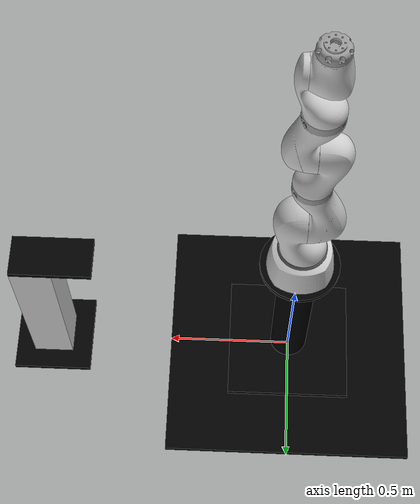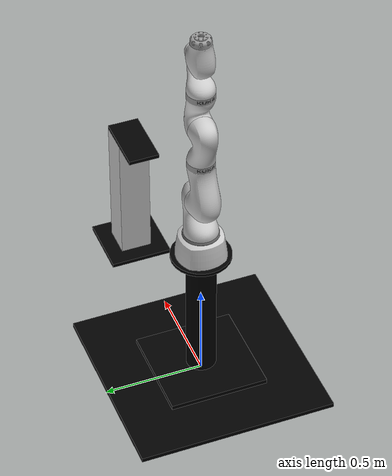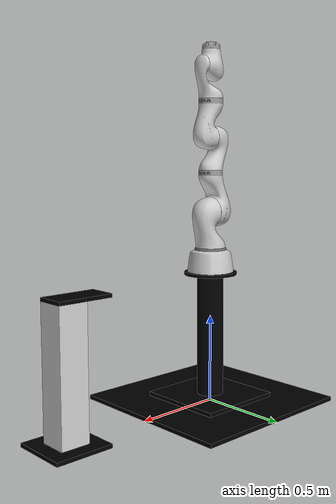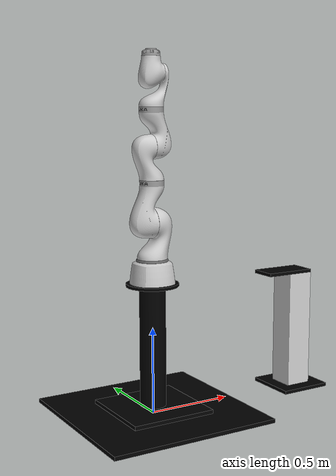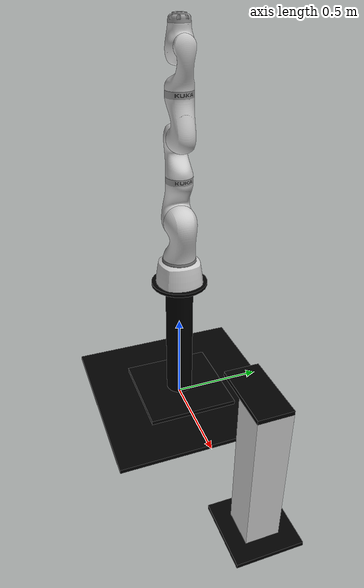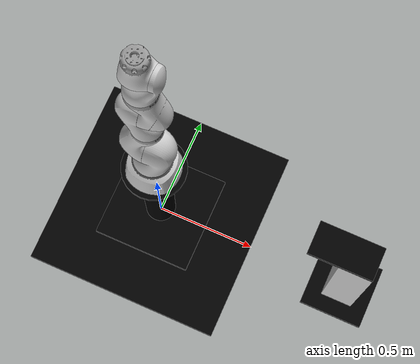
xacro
<?xml version="1.0"?>

<!-- top level -->
<robot name="med14" xmlns:xacro="http://www.ros.org/wiki/xacro">

    <!-- include macros -->
    <xacro:include filename="$(find lbr_description)/urdf/med14/med14_description.urdf.xacro" />
    <xacro:include filename="$(find cranium_description)/urdf/robot_pedestal.urdf.xacro" />
    <xacro:include filename="$(find cranium_description)/urdf/ankle_base.urdf.xacro" />
    <xacro:include filename="$(find cranium_description)/urdf/materials.xacro" />

    <xacro:arg name="robot_name" default="lbr" />
    <xacro:arg name="port_id" default="30200" />
    <xacro:arg name="sim" default="true" />

    <xacro:property name="pedestal_prefix" value="robot_" />
    <xacro:property name="work_area_prefix" value="wa_" />

    <link name="world" />

    <!-- pedestal -->
    <xacro:robot_pedestal prefix="${pedestal_prefix}" />
    <joint name="pedestal_joint" type="fixed">
        <parent link="world" />
        <child link="${pedestal_prefix}foot_link" />
        <origin rpy="0 0 0" xyz="0.0 0.0 0" />
    </joint>

    <!-- ankle base -->
    <xacro:ankle_base prefix="${work_area_prefix}" />
    <joint name="ankle_base_joint" type="fixed">
        <parent link="world" />
        <child link="${work_area_prefix}foot_link" />
        <origin rpy="0 0 ${pi}" xyz="1.0 0.0 0" />
    </joint>
    <!-- work area orgin -->
    <joint name="work_area_joint" type="fixed">
        <parent link="${work_area_prefix}work_area_link" />
        <child link="work_area_base" />
        <origin rpy="0 0 0" xyz="-0.155 -0.08 0" />
    </joint>
    <link name="work_area_base" />

    <!-- robot -->
    <joint name="base_joint" type="fixed">
        <parent link="robot_base_link" />
        <child link="link_0" />
        <origin rpy="0 0 ${pi/2}" xyz="0.0 0.0 0" />
    </joint>
    <xacro:med14 robot_name="$(arg robot_name)" port_id="$(arg port_id)" sim="$(arg sim)" />

</robot>

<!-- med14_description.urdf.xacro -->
<robot xmlns:xacro="http://www.ros.org/wiki/xacro">

    <!-- some constants -->
    <xacro:property name="PI" value="3.1415926535897931" />
    <xacro:property name="joint_damping" value="10.0" />
    <xacro:property name="joint_friction" value="0.1" />
    <xacro:property name="joint_0_position_limit" value="170" />
    <xacro:property name="joint_1_position_limit" value="120" />
    <xacro:property name="joint_2_position_limit" value="170" />
    <xacro:property name="joint_3_position_limit" value="120" />
    <xacro:property name="joint_4_position_limit" value="170" />
    <xacro:property name="joint_5_position_limit" value="120" />
    <xacro:property name="joint_6_position_limit" value="175" />
    <xacro:property name="joint_0_velocity_limit" value="85" />
    <xacro:property name="joint_1_velocity_limit" value="85" />
    <xacro:property name="joint_2_velocity_limit" value="100" />
    <xacro:property name="joint_3_velocity_limit" value="75" />
    <xacro:property name="joint_4_velocity_limit" value="130" />
    <xacro:property name="joint_5_velocity_limit" value="135" />
    <xacro:property name="joint_6_velocity_limit" value="135" />
    <xacro:property name="effort_limit" value="200" />

    <!-- includes -->
    <xacro:include filename="$(find aabl_cranium)/gazebo/lbr.gazebo.xacro" />
    <xacro:include filename="$(find lbr_description)/ros2_control/lbr.ros2_control.xacro" />

    <!-- robot as extracted via https://github.com/syuntoku14/fusion2urdf -->
    <xacro:macro name="med14"
        params="robot_name:=^|lbr port_id:=^|30200 sim:=^|true">

        <link name="link_0">
            <inertial>
                <origin rpy="0 0 0" xyz="-0.001864 0.0 0.077517" />
                <mass value="8.146413" />
                <inertia ixx="0.044604" ixy="0.0" ixz="-0.000788" iyy="0.045465" iyz="0.0"
                    izz="0.061904" />
            </inertial>
            <visual>
                <origin rpy="0 0 0" xyz="0 0 0" />
                <geometry>
                    <mesh filename="package://lbr_description/meshes/med14/visual/link_0.dae" />
                </geometry>
            </visual>
            <collision>
                <origin rpy="0 0 0" xyz="0 0 0" />
                <geometry>
                    <mesh filename="package://lbr_description/meshes/med14/collision/link_0.stl" />
                </geometry>
            </collision>
        </link>

        <joint name="A1" type="revolute">
            <origin rpy="0 0 0" xyz="0.0 0.0 0.147" />
            <parent link="link_0" />
            <child link="link_1" />
            <axis xyz="0.0 0.0 1.0" />
            <limit effort="${effort_limit}" lower="${-joint_0_position_limit * PI / 180}"
                upper="${joint_0_position_limit * PI / 180}"
                velocity="${joint_0_velocity_limit * PI / 180}" />
            <dynamics damping="${joint_damping}" friction="${joint_friction}" />
        </joint>

        <link name="link_1">
            <inertial>
                <origin rpy="0 0 0" xyz="0.0 -0.033795  0.132404" />
                <mass value="5.591419" />
                <inertia ixx="0.044885" ixy="0.0" ixz="0.0" iyy="0.045283" iyz="0.006703"
                    izz="0.016776" />
            </inertial>
            <visual>
                <origin rpy="0 0 0" xyz="0.0 0.0 -0.147" />
                <geometry>
                    <mesh filename="package://lbr_description/meshes/med14/visual/link_1.dae" />
                </geometry>
            </visual>
            <collision>
                <origin rpy="0 0 0" xyz="0.0 0.0 -0.147" />
                <geometry>
                    <mesh filename="package://lbr_description/meshes/med14/collision/link_1.stl" />
                </geometry>
            </collision>
        </link>

        <joint name="A2" type="revolute">
            <origin rpy="0 0 0" xyz="0.0 -0.01 0.2125" />
            <parent link="link_1" />
            <child link="link_2" />
            <axis xyz="0.0 1.0 0.0" />
            <limit effort="${effort_limit}" lower="${-joint_1_position_limit * PI / 180}"
                upper="${joint_1_position_limit * PI / 180}"
                velocity="${joint_1_velocity_limit * PI / 180}" />
            <dynamics damping="${joint_damping}" friction="${joint_friction}" />
        </joint>

        <link name="link_2">
            <inertial>
                <origin rpy="0 0 0" xyz="0.000136 0.047546 0.076324" />
                <mass value="6.013411" />
                <inertia ixx="0.05833" ixy="-3.5e-05" ixz="5.9e-05" iyy="0.057062" iyz="0.010605"
                    izz="0.017466" />
            </inertial>
            <visual>
                <origin rpy="0 0 0" xyz="0.0 0.01 -0.3595" />
                <geometry>
                    <mesh filename="package://lbr_description/meshes/med14/visual/link_2.dae" />
                </geometry>
            </visual>
            <collision>
                <origin rpy="0 0 0" xyz="0.0 0.01 -0.3595" />
                <geometry>
                    <mesh filename="package://lbr_description/meshes/med14/collision/link_2.stl" />
                </geometry>
            </collision>
        </link>

        <joint name="A3" type="revolute">
            <origin rpy="0 0 0" xyz="0.0 0.01 0.228" />
            <parent link="link_2" />
            <child link="link_3" />
            <axis xyz="0.0 0.0 1.0" />
            <limit effort="${effort_limit}" lower="${-joint_2_position_limit * PI / 180}"
                upper="${joint_2_position_limit * PI / 180}"
                velocity="${joint_2_velocity_limit * PI / 180}" />
            <dynamics damping="${joint_damping}" friction="${joint_friction}" />
        </joint>

        <link name="link_3">
            <inertial>
                <origin rpy="0 0 0" xyz="0.0 0.034913 0.123108" />
                <mass value="3.65879" />
                <inertia ixx="0.02296" ixy="0.0" ixz="0.0" iyy="0.021913" iyz="-0.004065"
                    izz="0.00814" />
            </inertial>
            <visual>
                <origin rpy="0 0 0" xyz="0.0 0.0 -0.5875" />
                <geometry>
                    <mesh filename="package://lbr_description/meshes/med14/visual/link_3.dae" />
                </geometry>
            </visual>
            <collision>
                <origin rpy="0 0 0" xyz="0.0 0.0 -0.5875" />
                <geometry>
                    <mesh filename="package://lbr_description/meshes/med14/collision/link_3.stl" />
                </geometry>
            </collision>
        </link>

        <joint name="A4" type="revolute">
            <origin rpy="0 0 0" xyz="0.0 0.0105 0.192" />
            <parent link="link_3" />
            <child link="link_4" />
            <axis xyz="0.0 -1.0 0.0" />
            <limit effort="${effort_limit}" lower="${-joint_3_position_limit * PI / 180}"
                upper="${joint_3_position_limit * PI / 180}"
                velocity="${joint_3_velocity_limit * PI / 180}" />
            <dynamics damping="${joint_damping}" friction="${joint_friction}" />
        </joint>

        <link name="link_4">
            <inertial>
                <origin rpy="0 0 0" xyz="0.0 -0.039793  0.086944" />
                <mass value="4.358267" />
                <inertia ixx="0.034255" ixy="0.0" ixz="0.0" iyy="0.032512" iyz="-0.006365"
                    izz="0.010444" />
            </inertial>
            <visual>
                <origin rpy="0 0 0" xyz="0.0 -0.0105 -0.7795" />
                <geometry>
                    <mesh filename="package://lbr_description/meshes/med14/visual/link_4.dae" />
                </geometry>
            </visual>
            <collision>
                <origin rpy="0 0 0" xyz="0.0 -0.0105 -0.7795" />
                <geometry>
                    <mesh filename="package://lbr_description/meshes/med14/collision/link_4.stl" />
                </geometry>
            </collision>
        </link>

        <joint name="A5" type="revolute">
            <origin rpy="0 0 0" xyz="0.0 -0.0105 0.2075" />
            <parent link="link_4" />
            <child link="link_5" />
            <axis xyz="0.0 0.0 1.0" />
            <limit effort="${effort_limit}" lower="${-joint_4_position_limit * PI / 180}"
                upper="${joint_4_position_limit * PI / 180}"
                velocity="${joint_4_velocity_limit * PI / 180}" />
            <dynamics damping="${joint_damping}" friction="${joint_friction}" />
        </joint>

        <link name="link_5">
            <inertial>
                <origin rpy="0 0 0" xyz="0.0 -0.029824  0.076267" />
                <mass value="1.653015" />
                <inertia ixx="0.009172" ixy="0.0" ixz="0.0"
                    iyy="0.007714" iyz="0.003033" izz="0.004159" />
            </inertial>
            <visual>
                <origin rpy="0 0 0" xyz="0.0 0.0 -0.987" />
                <geometry>
                    <mesh filename="package://lbr_description/meshes/med14/visual/link_5.dae" />
                </geometry>
            </visual>
            <collision>
                <origin rpy="0 0 0" xyz="0.0 0.0 -0.987" />
                <geometry>
                    <mesh filename="package://lbr_description/meshes/med14/collision/link_5.stl" />
                </geometry>
            </collision>
        </link>

        <joint name="A6" type="revolute">
            <origin rpy="0 0 0" xyz="0.0 -0.0707 0.1925" />
            <parent link="link_5" />
            <child link="link_6" />
            <axis xyz="0.0 1.0 0.0" />
            <limit effort="${effort_limit}" lower="${-joint_5_position_limit * PI / 180}"
                upper="${joint_5_position_limit * PI / 180}"
                velocity="${joint_5_velocity_limit * PI / 180}" />
            <dynamics damping="${joint_damping}" friction="${joint_friction}" />
        </joint>

        <link name="link_6">
            <inertial>
                <origin rpy="0 0 0" xyz="-1.000e-06 7.102e-02 4.953e-03" />
                <mass value="2.598211" />
                <inertia ixx="0.00764" ixy="0.0" ixz="0.0" iyy="0.007355" iyz="0.000336"
                    izz="0.005004" />
            </inertial>
            <visual>
                <origin rpy="0 0 0" xyz="0.0 0.0707 -1.1795" />
                <geometry>
                    <mesh filename="package://lbr_description/meshes/med14/visual/link_6.dae" />
                </geometry>
            </visual>
            <collision>
                <origin rpy="0 0 0" xyz="0.0 0.0707 -1.1795" />
                <geometry>
                    <mesh filename="package://lbr_description/meshes/med14/collision/link_6.stl" />
                </geometry>
            </collision>
        </link>

        <joint name="A7" type="revolute">
            <origin rpy="0 0 0" xyz="0.0 0.0707 0.091" />
            <parent link="link_6" />
            <child link="link_7" />
            <axis xyz="0.0 0.0 1.0" />
            <limit effort="${effort_limit}" lower="${-joint_6_position_limit * PI / 180}"
                upper="${joint_6_position_limit * PI / 180}"
                velocity="${joint_6_velocity_limit * PI / 180}" />
            <dynamics damping="${joint_damping}" friction="${joint_friction}" />
        </joint>

        <link name="link_7">
            <inertial>
                <origin rpy="0 0 0" xyz="3.0000e-06 -2.0000e-06 1.3782e-02" />
                <mass value="0.280474" />
                <inertia ixx="0.000185" ixy="0.0" ixz="0.0" iyy="0.000185" iyz="0.0" izz="0.000323" />
            </inertial>
            <visual>
                <origin rpy="0 0 0" xyz="0.0 0.0 -1.2705" />
                <geometry>
                    <mesh filename="package://lbr_description/meshes/med14/visual/link_7.dae" />
                </geometry>
            </visual>
            <collision>
                <origin rpy="0 0 0" xyz="0.0 0.0 -1.2705" />
                <geometry>
                    <mesh filename="package://lbr_description/meshes/med14/collision/link_7.stl" />
                </geometry>
            </collision>
        </link>

        <joint name="joint_ee" type="fixed">
            <parent link="link_7" />
            <child link="link_ee" />
            <origin xyz="0 0 0.035" rpy="0 0 0" />
        </joint>

        <link name="link_ee">
        </link>

        <xacro:lbr_gazebo robot_name="${robot_name}" />
        <!-- TODO: move modes to args, decouple urdf/gazebo/controls -->
        <xacro:lbr_system_interface
            joint_0_position_limit="${joint_0_position_limit * PI / 180}"
            joint_1_position_limit="${joint_1_position_limit * PI / 180}"
            joint_2_position_limit="${joint_2_position_limit * PI / 180}"
            joint_3_position_limit="${joint_3_position_limit * PI / 180}"
            joint_4_position_limit="${joint_4_position_limit * PI / 180}"
            joint_5_position_limit="${joint_5_position_limit * PI / 180}"
            joint_6_position_limit="${joint_6_position_limit * PI / 180}"
            effort_limit="${effort_limit}"
            sim="${sim}" remote_host="INADDR_ANY" port_id="${port_id}" />

    </xacro:macro>
</robot>

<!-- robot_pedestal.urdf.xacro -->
<!-- pedestal which the robot stands on -->
<robot xmlns:xacro="http://www.ros.org/wiki/xacro">

    <!-- xacro pedestal -->
    <xacro:macro name="robot_pedestal" params="prefix">
        <!-- pedestal links -->
        <link name="${prefix}foot_link">
            <visual>
                <origin rpy="0 0 0" xyz="0 0 0.0115" />
                <geometry>
                    <box size="1 1 0.023"/>
                </geometry>
                <material name="black" />
            </visual>
            <collision>
                <origin rpy="0 0 0" xyz="0 0 0.0115" />
                <geometry>
                    <box size="1 1 0.023"/>
                </geometry>
            </collision>
        </link>
        <link name="${prefix}mid_foot_link">
            <visual>
                <origin rpy="0 0 0" xyz="0 0 0.0115" />
                <geometry>
                    <box size="0.5 0.5 0.023"/>
                </geometry>
                <material name="black" />
            </visual>
            <collision>
                <origin rpy="0 0 0" xyz="0 0 0.0115" />
                <geometry>
                    <box size="0.5 0.5 0.023"/>
                </geometry>
            </collision>
        </link>
        <link name="${prefix}column_link">
            <visual>
                <origin rpy="0 0 0" xyz="0 0 0.35" />
                <geometry>
                    <cylinder length="0.7" radius="0.075"/>
                </geometry>
                <material name="black" />
            </visual>
            <collision>
                <origin rpy="0 0 0" xyz="0 0 0.35" />
                <geometry>
                    <cylinder length="0.7" radius="0.075"/>
                </geometry>
            </collision>
        </link>
        <link name="${prefix}base_link">
            <visual>
                <origin rpy="0 0 0" xyz="0 0 0.0085" />
                <geometry>
                    <cylinder length="0.017" radius="0.15"/>
                </geometry>
                <material name="black" />
            </visual>
        </link>

        <!-- pedestal joints -->
        <joint name="${prefix}foot_joint" type="fixed">
            <parent link="${prefix}foot_link" />
            <child link="${prefix}mid_foot_link" />
            <origin rpy="0 0 0" xyz="0.0 0.0 0.023" />
        </joint>
        <joint name="${prefix}foot_column_joint" type="fixed">
            <parent link="${prefix}mid_foot_link" />
            <child link="${prefix}column_link" />
            <origin rpy="0 0 0" xyz="0.0 0.0 0.023" />
        </joint>
        <joint name="${prefix}column_base_joint" type="fixed">
            <parent link="${prefix}column_link" />
            <child link="${prefix}base_link" />
            <origin rpy="0 0 0" xyz="0.0 0.0 0.7" />
        </joint>
    </xacro:macro>
</robot>

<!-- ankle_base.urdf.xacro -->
<!-- top level -->
<robot name="med14" xmlns:xacro="http://www.ros.org/wiki/xacro">

    <!-- xacro ankle base -->
    <xacro:macro name="ankle_base" params="prefix">
        <!-- work area links -->
        <link name="${prefix}foot_link">
            <visual>
                <origin rpy="0 0 0" xyz="0 0 0.0105" />
                <geometry>
                    <box size="0.32 0.32 0.021" />
                </geometry>
                <material name="black" />
            </visual>
            <collision>
                <origin rpy="0 0 0" xyz="0 0 0.0105" />
                <geometry>
                    <box size="0.32 0.32 0.021" />
                </geometry>
            </collision>
        </link>
        <link name="${prefix}mid_foot_link">
            <visual>
                <origin rpy="0 0 0" xyz="0 0 0.3535" />
                <geometry>
                    <box size="0.16 0.16 0.707" />
                </geometry>
                <material name="aluminium" />
            </visual>
            <collision>
                <origin rpy="0 0 0" xyz="0 0 0.3535" />
                <geometry>
                    <box size="0.16 0.16 0.707" />
                </geometry>
            </collision>
        </link>
        <link name="${prefix}work_area_link">
            <visual>
                <origin rpy="0 0 0" xyz="0.0 0.0 -0.01" />
                <geometry>
                    <box size="0.31 0.16 0.02" />
                </geometry>
                <material name="black" />
            </visual>
            <collision>
                <origin rpy="0 0 0" xyz="0.0 0.0 -0.01" />
                <geometry>
                    <box size="0.31 0.16 0.02" />
                </geometry>
            </collision>
        </link>

        <!-- work area joints -->
        <joint name="${prefix}foot_joint" type="fixed">
            <parent link="${prefix}foot_link" />
            <child link="${prefix}mid_foot_link" />
            <origin rpy="0 0 0" xyz="0.0 0.0 0.021" />
        </joint>
        <joint name="${prefix}foot_work_area_joint" type="fixed">
            <parent link="${prefix}mid_foot_link" />
            <child link="${prefix}work_area_link" />
            <origin rpy="0 0 0" xyz="0.075 0.0 0.727" />
        </joint>

    </xacro:macro>
</robot>

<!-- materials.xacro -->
<!-- color materials for cranium -->
<robot xmlns:xacro="http://www.ros.org/wiki/xacro">

    <!-- black color -->
    <material name="black">
        <color rgba="0.0 0.0 0.0 1.0"/>
    </material>

    <!-- aluminum color -->
    <material name="aluminium">
        <color rgba="0.8 0.8 0.8 1.0" />
    </material>
</robot>
